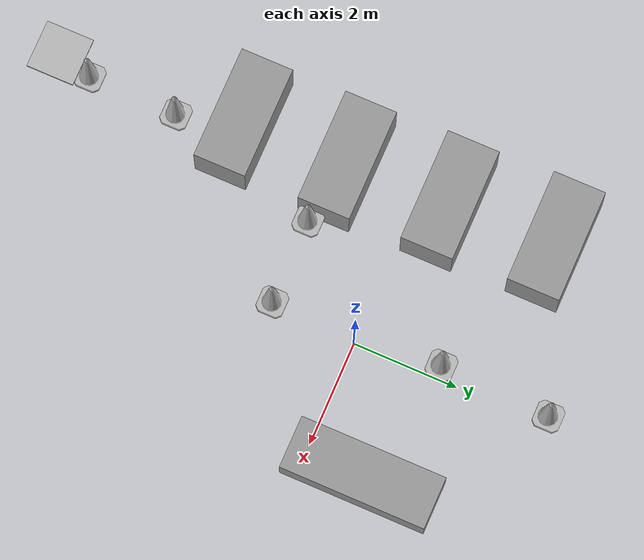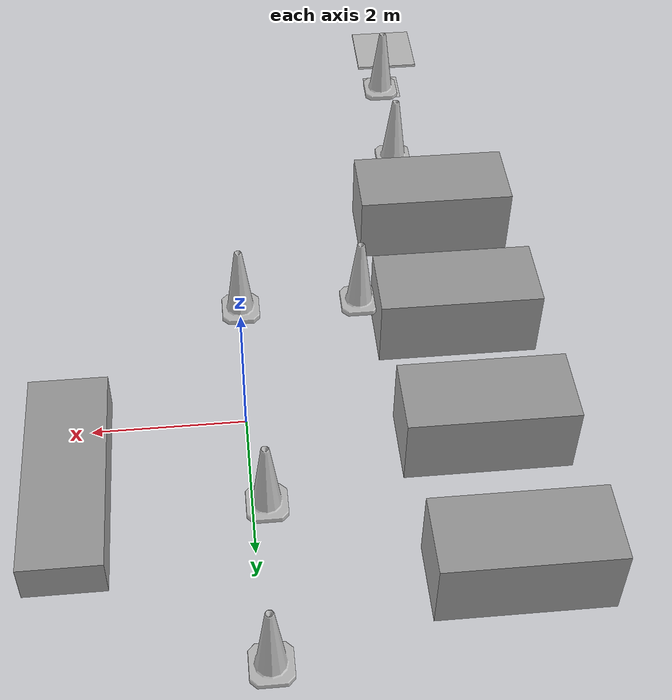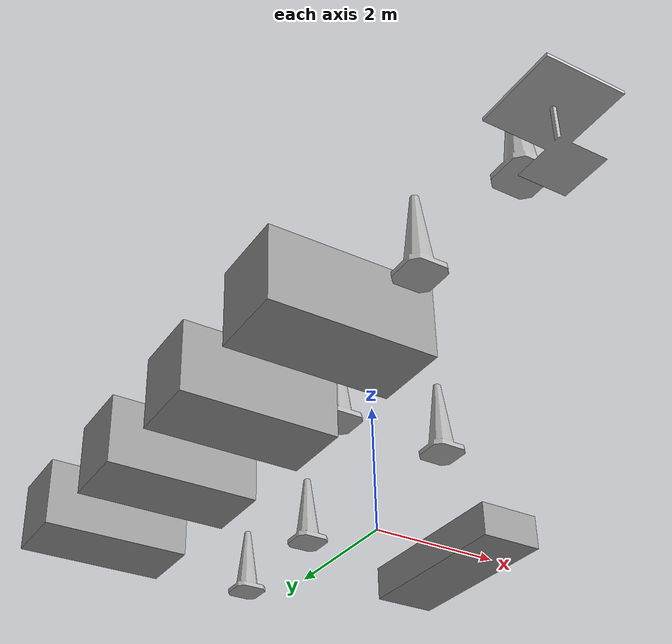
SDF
<?xml version='1.0'?>
<sdf version='1.7'>
  <model name='bochum_experimental_field'>
    <link name='link_0'>
      <inertial>
        <mass>2.15009</mass>
        <inertia>
          <ixx>0.358349</ixx>
          <ixy>0</ixy>
          <ixz>0</ixz>
          <iyy>1.00747</iyy>
          <iyz>0</iyz>
          <izz>1.00747</izz>
        </inertia>
        <pose>0 0 0 0 -0 0</pose>
      </inertial>
      <pose>-3.05228 2.59482 0.5 0 -0 0</pose>
      <gravity>1</gravity>
      <self_collide>0</self_collide>
      <kinematic>0</kinematic>
      <enable_wind>0</enable_wind>
      <visual name='visual'>
        <pose>0 0 0 0 -0 0</pose>
        <geometry>
          <box>
            <size>2.15008 1 1</size>
          </box>
        </geometry>
        <material>
          <lighting>1</lighting>
          <script>
            <uri>file://media/materials/scripts/gazebo.material</uri>
            <name>Gazebo/Grey</name>
          </script>
          <shader type='pixel'>
            <normal_map>__default__</normal_map>
          </shader>
          <ambient>0.3 0.3 0.3 1</ambient>
          <diffuse>0.7 0.7 0.7 1</diffuse>
          <specular>0.01 0.01 0.01 1</specular>
          <emissive>0 0 0 1</emissive>
        </material>
        <transparency>0</transparency>
        <cast_shadows>1</cast_shadows>
      </visual>
      <collision name='collision'>
        <laser_retro>0</laser_retro>
        <max_contacts>10</max_contacts>
        <pose>0 0 0 0 -0 0</pose>
        <geometry>
          <box>
            <size>2.15008 1 1</size>
          </box>
        </geometry>
        <surface>
          <friction>
            <ode>
              <mu>1</mu>
              <mu2>1</mu2>
              <fdir1>0 0 0</fdir1>
              <slip1>0</slip1>
              <slip2>0</slip2>
            </ode>
            <torsional>
              <coefficient>1</coefficient>
              <patch_radius>0</patch_radius>
              <surface_radius>0</surface_radius>
              <use_patch_radius>1</use_patch_radius>
              <ode>
                <slip>0</slip>
              </ode>
            </torsional>
          </friction>
          <bounce>
            <restitution_coefficient>0</restitution_coefficient>
            <threshold>1e+06</threshold>
          </bounce>
          <contact>
            <collide_without_contact>0</collide_without_contact>
            <collide_without_contact_bitmask>1</collide_without_contact_bitmask>
            <collide_bitmask>1</collide_bitmask>
            <ode>
              <soft_cfm>0</soft_cfm>
              <soft_erp>0.2</soft_erp>
              <kp>1e+13</kp>
              <kd>1</kd>
              <max_vel>0.01</max_vel>
              <min_depth>0</min_depth>
            </ode>
            <bullet>
              <split_impulse>1</split_impulse>
              <split_impulse_penetration_threshold>-0.01</split_impulse_penetration_threshold>
              <soft_cfm>0</soft_cfm>
              <soft_erp>0.2</soft_erp>
              <kp>1e+13</kp>
              <kd>1</kd>
            </bullet>
          </contact>
        </surface>
      </collision>
    </link>
    <link name='link_0_clone'>
      <inertial>
        <mass>2.15009</mass>
        <inertia>
          <ixx>0.358349</ixx>
          <ixy>0</ixy>
          <ixz>0</ixz>
          <iyy>1.00747</iyy>
          <iyz>0</iyz>
          <izz>1.00747</izz>
        </inertia>
        <pose>0 0 0 0 -0 0</pose>
      </inertial>
      <pose>-2.98867 0.562303 0.5 0 -0 0</pose>
      <gravity>1</gravity>
      <self_collide>0</self_collide>
      <kinematic>0</kinematic>
      <enable_wind>0</enable_wind>
      <visual name='visual'>
        <pose>0 0 0 0 -0 0</pose>
        <geometry>
          <box>
            <size>2.15008 1 1</size>
          </box>
        </geometry>
        <material>
          <lighting>1</lighting>
          <script>
            <uri>file://media/materials/scripts/gazebo.material</uri>
            <name>Gazebo/Grey</name>
          </script>
          <shader type='pixel'>
            <normal_map>__default__</normal_map>
          </shader>
          <ambient>0.3 0.3 0.3 1</ambient>
          <diffuse>0.7 0.7 0.7 1</diffuse>
          <specular>0.01 0.01 0.01 1</specular>
          <emissive>0 0 0 1</emissive>
        </material>
        <transparency>0</transparency>
        <cast_shadows>1</cast_shadows>
      </visual>
      <collision name='collision'>
        <laser_retro>0</laser_retro>
        <max_contacts>10</max_contacts>
        <pose>0 0 0 0 -0 0</pose>
        <geometry>
          <box>
            <size>2.15008 1 1</size>
          </box>
        </geometry>
        <surface>
          <friction>
            <ode>
              <mu>1</mu>
              <mu2>1</mu2>
              <fdir1>0 0 0</fdir1>
              <slip1>0</slip1>
              <slip2>0</slip2>
            </ode>
            <torsional>
              <coefficient>1</coefficient>
              <patch_radius>0</patch_radius>
              <surface_radius>0</surface_radius>
              <use_patch_radius>1</use_patch_radius>
              <ode>
                <slip>0</slip>
              </ode>
            </torsional>
          </friction>
          <bounce>
            <restitution_coefficient>0</restitution_coefficient>
            <threshold>1e+06</threshold>
          </bounce>
          <contact>
            <collide_without_contact>0</collide_without_contact>
            <collide_without_contact_bitmask>1</collide_without_contact_bitmask>
            <collide_bitmask>1</collide_bitmask>
            <ode>
              <soft_cfm>0</soft_cfm>
              <soft_erp>0.2</soft_erp>
              <kp>1e+13</kp>
              <kd>1</kd>
              <max_vel>0.01</max_vel>
              <min_depth>0</min_depth>
            </ode>
            <bullet>
              <split_impulse>1</split_impulse>
              <split_impulse_penetration_threshold>-0.01</split_impulse_penetration_threshold>
              <soft_cfm>0</soft_cfm>
              <soft_erp>0.2</soft_erp>
              <kp>1e+13</kp>
              <kd>1</kd>
            </bullet>
          </contact>
        </surface>
      </collision>
    </link>
    <link name='link_0_clone_0'>
      <inertial>
        <mass>2.15009</mass>
        <inertia>
          <ixx>0.358349</ixx>
          <ixy>0</ixy>
          <ixz>0</ixz>
          <iyy>1.00747</iyy>
          <iyz>0</iyz>
          <izz>1.00747</izz>
        </inertia>
        <pose>0 0 0 0 -0 0</pose>
      </inertial>
      <pose>-2.92896 -1.41134 0.5 0 -0 0</pose>
      <gravity>1</gravity>
      <self_collide>0</self_collide>
      <kinematic>0</kinematic>
      <enable_wind>0</enable_wind>
      <visual name='visual'>
        <pose>0 0 0 0 -0 0</pose>
        <geometry>
          <box>
            <size>2.15008 1 1</size>
          </box>
        </geometry>
        <material>
          <lighting>1</lighting>
          <script>
            <uri>file://media/materials/scripts/gazebo.material</uri>
            <name>Gazebo/Grey</name>
          </script>
          <shader type='pixel'>
            <normal_map>__default__</normal_map>
          </shader>
          <ambient>0.3 0.3 0.3 1</ambient>
          <diffuse>0.7 0.7 0.7 1</diffuse>
          <specular>0.01 0.01 0.01 1</specular>
          <emissive>0 0 0 1</emissive>
        </material>
        <transparency>0</transparency>
        <cast_shadows>1</cast_shadows>
      </visual>
      <collision name='collision'>
        <laser_retro>0</laser_retro>
        <max_contacts>10</max_contacts>
        <pose>0 0 0 0 -0 0</pose>
        <geometry>
          <box>
            <size>2.15008 1 1</size>
          </box>
        </geometry>
        <surface>
          <friction>
            <ode>
              <mu>1</mu>
              <mu2>1</mu2>
              <fdir1>0 0 0</fdir1>
              <slip1>0</slip1>
              <slip2>0</slip2>
            </ode>
            <torsional>
              <coefficient>1</coefficient>
              <patch_radius>0</patch_radius>
              <surface_radius>0</surface_radius>
              <use_patch_radius>1</use_patch_radius>
              <ode>
                <slip>0</slip>
              </ode>
            </torsional>
          </friction>
          <bounce>
            <restitution_coefficient>0</restitution_coefficient>
            <threshold>1e+06</threshold>
          </bounce>
          <contact>
            <collide_without_contact>0</collide_without_contact>
            <collide_without_contact_bitmask>1</collide_without_contact_bitmask>
            <collide_bitmask>1</collide_bitmask>
            <ode>
              <soft_cfm>0</soft_cfm>
              <soft_erp>0.2</soft_erp>
              <kp>1e+13</kp>
              <kd>1</kd>
              <max_vel>0.01</max_vel>
              <min_depth>0</min_depth>
            </ode>
            <bullet>
              <split_impulse>1</split_impulse>
              <split_impulse_penetration_threshold>-0.01</split_impulse_penetration_threshold>
              <soft_cfm>0</soft_cfm>
              <soft_erp>0.2</soft_erp>
              <kp>1e+13</kp>
              <kd>1</kd>
            </bullet>
          </contact>
        </surface>
      </collision>
    </link>
    <link name='link_0_clone_1'>
      <inertial>
        <mass>2.15009</mass>
        <inertia>
          <ixx>0.358349</ixx>
          <ixy>0</ixy>
          <ixz>0</ixz>
          <iyy>1.00747</iyy>
          <iyz>0</iyz>
          <izz>1.00747</izz>
        </inertia>
        <pose>0 0 0 0 -0 0</pose>
      </inertial>
      <pose>-2.90708 -3.43536 0.5 0 -0 0</pose>
      <gravity>1</gravity>
      <self_collide>0</self_collide>
      <kinematic>0</kinematic>
      <enable_wind>0</enable_wind>
      <visual name='visual'>
        <pose>0 0 0 0 -0 0</pose>
        <geometry>
          <box>
            <size>2.15008 1 1</size>
          </box>
        </geometry>
        <material>
          <lighting>1</lighting>
          <script>
            <uri>file://media/materials/scripts/gazebo.material</uri>
            <name>Gazebo/Grey</name>
          </script>
          <shader type='pixel'>
            <normal_map>__default__</normal_map>
          </shader>
          <ambient>0.3 0.3 0.3 1</ambient>
          <diffuse>0.7 0.7 0.7 1</diffuse>
          <specular>0.01 0.01 0.01 1</specular>
          <emissive>0 0 0 1</emissive>
        </material>
        <transparency>0</transparency>
        <cast_shadows>1</cast_shadows>
      </visual>
      <collision name='collision'>
        <laser_retro>0</laser_retro>
        <max_contacts>10</max_contacts>
        <pose>0 0 0 0 -0 0</pose>
        <geometry>
          <box>
            <size>2.15008 1 1</size>
          </box>
        </geometry>
        <surface>
          <friction>
            <ode>
              <mu>1</mu>
              <mu2>1</mu2>
              <fdir1>0 0 0</fdir1>
              <slip1>0</slip1>
              <slip2>0</slip2>
            </ode>
            <torsional>
              <coefficient>1</coefficient>
              <patch_radius>0</patch_radius>
              <surface_radius>0</surface_radius>
              <use_patch_radius>1</use_patch_radius>
              <ode>
                <slip>0</slip>
              </ode>
            </torsional>
          </friction>
          <bounce>
            <restitution_coefficient>0</restitution_coefficient>
            <threshold>1e+06</threshold>
          </bounce>
          <contact>
            <collide_without_contact>0</collide_without_contact>
            <collide_without_contact_bitmask>1</collide_without_contact_bitmask>
            <collide_bitmask>1</collide_bitmask>
            <ode>
              <soft_cfm>0</soft_cfm>
              <soft_erp>0.2</soft_erp>
              <kp>1e+13</kp>
              <kd>1</kd>
              <max_vel>0.01</max_vel>
              <min_depth>0</min_depth>
            </ode>
            <bullet>
              <split_impulse>1</split_impulse>
              <split_impulse_penetration_threshold>-0.01</split_impulse_penetration_threshold>
              <soft_cfm>0</soft_cfm>
              <soft_erp>0.2</soft_erp>
              <kp>1e+13</kp>
              <kd>1</kd>
            </bullet>
          </contact>
        </surface>
      </collision>
    </link>
    <link name='link_1'>
      <inertial>
        <mass>1.49779</mass>
        <inertia>
          <ixx>0.99972</ixx>
          <ixy>0</ixy>
          <ixz>0</ixz>
          <iyy>0.161075</iyy>
          <iyz>0</iyz>
          <izz>1.08828</izz>
        </inertia>
        <pose>0 0 0 0 -0 0</pose>
      </inertial>
      <pose>2.21562 1.11539 0.5 0 -0 0</pose>
      <visual name='visual'>
        <pose>0 0 0 0 -0 0</pose>
        <geometry>
          <box>
            <size>1 2.77832 0.538978</size>
          </box>
        </geometry>
        <material>
          <lighting>1</lighting>
          <script>
            <uri>file://media/materials/scripts/gazebo.material</uri>
            <name>Gazebo/Grey</name>
          </script>
          <shader type='pixel'/>
        </material>
        <transparency>0</transparency>
        <cast_shadows>1</cast_shadows>
      </visual>
      <collision name='collision'>
        <laser_retro>0</laser_retro>
        <max_contacts>10</max_contacts>
        <pose>0 0 0 0 -0 0</pose>
        <geometry>
          <box>
            <size>1 2.77832 0.538978</size>
          </box>
        </geometry>
        <surface>
          <friction>
            <ode>
              <mu>1</mu>
              <mu2>1</mu2>
              <fdir1>0 0 0</fdir1>
              <slip1>0</slip1>
              <slip2>0</slip2>
            </ode>
            <torsional>
              <coefficient>1</coefficient>
              <patch_radius>0</patch_radius>
              <surface_radius>0</surface_radius>
              <use_patch_radius>1</use_patch_radius>
              <ode>
                <slip>0</slip>
              </ode>
            </torsional>
          </friction>
          <bounce>
            <restitution_coefficient>0</restitution_coefficient>
            <threshold>1e+06</threshold>
          </bounce>
          <contact>
            <collide_without_contact>0</collide_without_contact>
            <collide_without_contact_bitmask>1</collide_without_contact_bitmask>
            <collide_bitmask>1</collide_bitmask>
            <ode>
              <soft_cfm>0</soft_cfm>
              <soft_erp>0.2</soft_erp>
              <kp>1e+13</kp>
              <kd>1</kd>
              <max_vel>0.01</max_vel>
              <min_depth>0</min_depth>
            </ode>
            <bullet>
              <split_impulse>1</split_impulse>
              <split_impulse_penetration_threshold>-0.01</split_impulse_penetration_threshold>
              <soft_cfm>0</soft_cfm>
              <soft_erp>0.2</soft_erp>
              <kp>1e+13</kp>
              <kd>1</kd>
            </bullet>
          </contact>
        </surface>
      </collision>
    </link>
    <model name='Construction Cone'>
      <link name='link'>
        <collision name='collision'>
          <geometry>
            <mesh>
              <scale>10 10 10</scale>
              <uri>model://construction_cone/meshes/construction_cone.dae</uri>
            </mesh>
          </geometry>
        </collision>
        <visual name='visual'>
          <geometry>
            <mesh>
              <scale>10 10 10</scale>
              <uri>model://construction_cone/meshes/construction_cone.dae</uri>
            </mesh>
          </geometry>
        </visual>
      </link>
      <pose>-0.076883 3.72086 0.416667 0 -0 0</pose>
    </model>
    <model name='Construction Cone_clone'>
      <link name='link'>
        <collision name='collision'>
          <geometry>
            <mesh>
              <scale>10 10 10</scale>
              <uri>model://construction_cone/meshes/construction_cone.dae</uri>
            </mesh>
          </geometry>
        </collision>
        <visual name='visual'>
          <geometry>
            <mesh>
              <scale>10 10 10</scale>
              <uri>model://construction_cone/meshes/construction_cone.dae</uri>
            </mesh>
          </geometry>
        </visual>
      </link>
      <pose>-0.169234 1.61428 0.416667 0 -0 0</pose>
    </model>
    <model name='Construction Cone_clone_clone'>
      <link name='link'>
        <collision name='collision'>
          <geometry>
            <mesh>
              <scale>10 10 10</scale>
              <uri>model://construction_cone/meshes/construction_cone.dae</uri>
            </mesh>
          </geometry>
        </collision>
        <visual name='visual'>
          <geometry>
            <mesh>
              <scale>10 10 10</scale>
              <uri>model://construction_cone/meshes/construction_cone.dae</uri>
            </mesh>
          </geometry>
        </visual>
      </link>
      <pose>-0.027988 -1.61092 0.416667 0 -0 0</pose>
    </model>
    <model name='Construction Cone_clone_clone_0'>
      <link name='link'>
        <collision name='collision'>
          <geometry>
            <mesh>
              <scale>10 10 10</scale>
              <uri>model://construction_cone/meshes/construction_cone.dae</uri>
            </mesh>
          </geometry>
        </collision>
        <visual name='visual'>
          <geometry>
            <mesh>
              <scale>10 10 10</scale>
              <uri>model://construction_cone/meshes/construction_cone.dae</uri>
            </mesh>
          </geometry>
        </visual>
      </link>
      <pose>-1.64946 -1.62075 0.416667 0 -0 0</pose>
    </model>
    <model name='Construction Cone_clone_clone_0_clone'>
      <link name='link'>
        <collision name='collision'>
          <geometry>
            <mesh>
              <scale>10 10 10</scale>
              <uri>model://construction_cone/meshes/construction_cone.dae</uri>
            </mesh>
          </geometry>
        </collision>
        <visual name='visual'>
          <geometry>
            <mesh>
              <scale>10 10 10</scale>
              <uri>model://construction_cone/meshes/construction_cone.dae</uri>
            </mesh>
          </geometry>
        </visual>
      </link>
      <pose>-2.51392 -4.60052 0.416667 0 -0 0</pose>
    </model>
    <model name='Construction Cone_clone_clone_0_clone_0'>
      <link name='link'>
        <collision name='collision'>
          <geometry>
            <mesh>
              <scale>10 10 10</scale>
              <uri>model://construction_cone/meshes/construction_cone.dae</uri>
            </mesh>
          </geometry>
        </collision>
        <visual name='visual'>
          <geometry>
            <mesh>
              <scale>10 10 10</scale>
              <uri>model://construction_cone/meshes/construction_cone.dae</uri>
            </mesh>
          </geometry>
        </visual>
      </link>
      <pose>-2.54021 -6.31939 0.416667 0 -0 0</pose>
    </model>
    <model name='cafe_table'>
      <static>1</static>
      <link name='link'>
        <collision name='surface'>
          <pose>0 0 0.755 0 -0 0</pose>
          <geometry>
            <box>
              <size>0.913 0.913 0.04</size>
            </box>
          </geometry>
        </collision>
        <collision name='column'>
          <pose>0 0 0.37 0 -0 0</pose>
          <geometry>
            <box>
              <size>0.042 0.042 0.74</size>
            </box>
          </geometry>
        </collision>
        <collision name='base'>
          <pose>0 0 0.02 0 -0 0</pose>
          <geometry>
            <box>
              <size>0.56 0.56 0.04</size>
            </box>
          </geometry>
        </collision>
        <visual name='visual'>
          <geometry>
            <mesh>
              <uri>model://cafe_table/meshes/cafe_table.dae</uri>
            </mesh>
          </geometry>
        </visual>
      </link>
      <pose>-2.6567 -6.94041 0 0 -0 0</pose>
    </model>
    <static>0</static>
    <allow_auto_disable>1</allow_auto_disable>
  </model>
</sdf>
